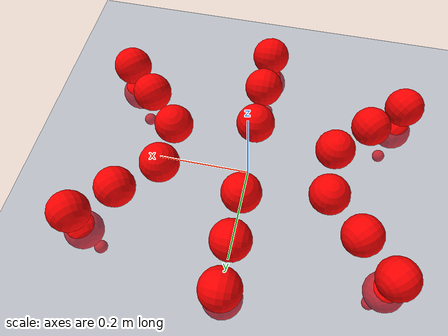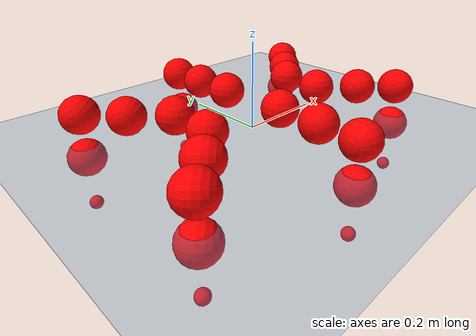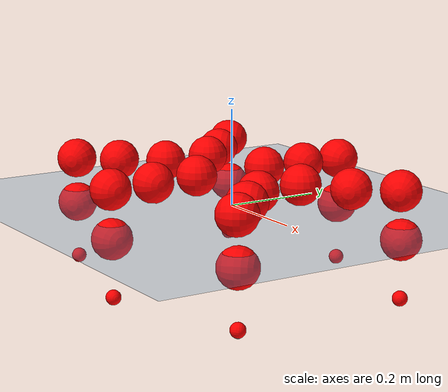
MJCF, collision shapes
<mujoco model="Golem">
  <compiler angle="radian" assetdir="assets" balanceinertia="true" inertiafromgeom="false"/>

  <option timestep="0.005" density="1.2" viscosity="2e-05"/>

  <size nkey="1"/>

  <visual>
    <quality shadowsize="8192"/>
    <map shadowclip="0.5"/>
  </visual>

  <default>
    <default class="/">
      <joint armature="0.01" damping="0.01" frictionloss="0.01"/>
      <geom contype="0" conaffinity="0" group="1" solref="-1000 -80"/>
      <site size="0.01 0.005 0.005" group="5"/>
      <general forcelimited="true" biastype="affine" gainprm="25" biasprm="0 -25 -0.5"/>
      <default class="visual">
        <geom type="mesh" group="2"/>
      </default>
      <default class="collision">
        <geom group="3"/>
      </default>
      <default class="foot">
        <geom size="0.01 0 0" condim="6" group="4" priority="1" solimp="0.015 1 0.01"/>
      </default>
      <default class="reward_collision_sphere">
        <geom group="5" rgba="1 0 0 1"/>
      </default>
    </default>
  </default>

  <asset>
    <texture type="skybox" colorspace="auto" name="//unnamed_texture_0" builtin="gradient" rgb1="0.95 0.95 0.95" rgb2="0.95 0.95 0.95" width="100" height="600"/>
    <texture type="2d" colorspace="auto" name="texplane" builtin="checker" rgb1="0.345 0.575 0.748" rgb2="0.345 0.575 0.748" markrgb="1 1 1" width="512" height="512"/>
    <material name="MatPlane" class="/" texture="texplane" texuniform="true" texrepeat="2 2" specular="0.9"/>
    <mesh name="body" class="/" file="body.stl" scale="0.001 0.001 0.001"/>
    <mesh name="coxa" class="/" file="coxa.stl" scale="0.001 0.001 0.001"/>
    <mesh name="femur" class="/" file="femur.stl" scale="0.001 0.001 0.001"/>
    <mesh name="tibia" class="/" file="tibia.stl" scale="0.001 0.001 0.001"/>
    <mesh name="tarsus" class="/" file="tarsus.stl" scale="0.001 0.001 0.001"/>
  </asset>

  <worldbody>
    <geom name="floor" class="/" size="100 100 0.125" type="plane" group="0" material="MatPlane"/>
    <light name="toplight_shadow" class="/" pos="0 0 5" dir="0.0990148 0.0990148 -0.990148" type="directional" ambient="0.04 0.04 0.04" diffuse="0.55 0.55 0.55" specular="0.12 0.12 0.12"/>
    <light name="toplight_fill" class="/" pos="0 0 5" dir="0.0990148 0.0990148 -0.990148" type="directional" castshadow="false" ambient="0.04 0.04 0.04" diffuse="0.3 0.3 0.3" specular="0.08 0.08 0.08"/>
    <body name="trunk" pos="-0.00158477 -0.00113669 -0.00098629" quat="1 6.99175e-07 -2.19725e-06 -1.69893e-07">
      <inertial pos="0.00194556 -0.000897361 -0.00447264" quat="0.99998 0.00556159 -0.00110272 -0.00273226" mass="4.17651" diaginertia="0.0171701 0.00544473 0.0179814"/>
      <joint name="//unnamed_joint_0" type="free"/>
      <geom name="//unnamed_geom_1" class="/" pos="0 0 0.071534" quat="1 0 0 0" type="mesh" rgba="0.9 0.9 0.9 1" mesh="body"/>
      <site name="imu" class="/" pos="0.156996 0.00785248 0.111975" size="0.0103882"/>
      <camera name="track" class="/" pos="0 -1.77384 0" quat="0.707107 0.707107 0 0" mode="trackcom"/>
      <camera name="ego_camera" class="/" pos="0.144536 0 0.111772" quat="-0.5 -0.5 0.5 0.5"/>
      <body name="coxa_RR" pos="-0.197637 -0.0762038 0.0712446" quat="0.382598 0.000107938 0.00022448 -0.923915">
        <inertial pos="0.000129049 -0.000686713 -0.000105207" quat="1 0.000208971 0.000151874 -0.000142165" mass="0.221521" diaginertia="0.0164695 0.00543572 0.0166649"/>
        <joint name="coxa_joint_RR" class="/" pos="0 0 0" axis="0.00086251 -0.00097251 -0.999999" range="-3.13643 3.14108" armature="0.0107121" damping="0.00659705" frictionloss="0.0103617"/>
        <geom name="//unnamed_geom_2" class="/" type="mesh" rgba="0.2 0.2 0.2 1" mesh="coxa"/>
        <geom name="//unnamed_geom_3" class="reward_collision_sphere" size="0.0415527" pos="-0.0333544 0 0"/>
        <body name="femur_RR" pos="0.0680273 0.00309295 -0.00201972" quat="0.499569 -0.500342 0.500455 0.499633">
          <inertial pos="-0.00275947 -5.50303e-05 -0.00255612" quat="0.99991 0.0102773 0.00848317 -0.00140672" mass="0.217777" diaginertia="0.0163925 0.00528795 0.0169709"/>
          <joint name="femur_joint_RR" class="/" pos="0 0 0" axis="0.000139612 -0.000165155 -1" stiffness="0.00899124" range="-3.11986 3.14446" armature="0.0103188" damping="0.00510245" frictionloss="0.0104506"/>
          <geom name="//unnamed_geom_4" class="/" type="mesh" rgba="0.9 0.9 0.9 1" mesh="femur"/>
          <geom name="//unnamed_geom_5" class="reward_collision_sphere" size="0.0415527"/>
          <body name="tibia_RR" pos="0.00174027 -0.0956289 -0.00210595" quat="-5.29044e-05 1 -5.84828e-05 -0.000100558">
            <inertial pos="0.000164957 0.000557512 -0.00262097" quat="0.999985 0.000187634 -0.00502466 -0.0021427" mass="0.230687" diaginertia="0.0177302 0.00580034 0.0179021"/>
            <joint name="tibia_joint_RR" class="/" pos="0 0 0" axis="-0.00701584 0.011432 0.99991" range="-3.16363 3.13466" armature="0.0102415" damping="0.00320315" frictionloss="0.00922216"/>
            <geom name="//unnamed_geom_6" class="/" type="mesh" rgba="0.2 0.2 0.2 1" mesh="tibia"/>
            <geom name="//unnamed_geom_7" class="reward_collision_sphere" size="0.0415527"/>
            <body name="tarsus_RR" pos="0.0962777 0.00028489 -0.000389872" quat="1 3.62521e-05 -0.000142271 0.000111047">
              <inertial pos="0.0681592 0.00065143 0.000537973" quat="0.507786 0.49532 0.505131 0.491583" mass="0.226778" diaginertia="0.016678 0.00541954 0.0176767"/>
              <joint name="tarsus_joint_RR" class="/" pos="0 0 0" axis="0.00721828 0.00698742 0.99995" range="-3.14443 3.10879" armature="0.0105029" damping="0.0452191" frictionloss="0.00988215"/>
              <geom name="//unnamed_geom_8" class="/" type="mesh" rgba="0.9 0.9 0.9 1" mesh="tarsus"/>
              <geom name="foot_1" class="foot" size="0.0103797" pos="0.124523 0 0" quat="0 -0.707107 0 0.707107"/>
              <geom name="//unnamed_geom_10" class="reward_collision_sphere" size="0.0415527"/>
              <geom name="//unnamed_geom_11" class="reward_collision_sphere" size="0.0155823" pos="0.11952 0 0"/>
              <site name="foot_1" class="foot" pos="0.124523 0 0" quat="0 -0.707107 0 0.707107" size="0.0103882"/>
            </body>
          </body>
        </body>
      </body>
      <body name="coxa_RM" pos="0.000973454 -0.115478 0.0735124" quat="0.707105 0.0011573 0.000816474 -0.707107">
        <inertial pos="-0.00230682 0.000348027 -0.0026166" quat="0.999943 0.00504107 -0.00258241 -0.00899906" mass="0.22485" diaginertia="0.0162254 0.00546727 0.0174398"/>
        <joint name="coxa_joint_RM" class="/" pos="0 0 0" axis="-0.000218728 -0.00448485 -0.99999" range="-3.11874 3.14554" armature="0.0100344" damping="0.00889791" frictionloss="0.0103852"/>
        <geom name="//unnamed_geom_12" class="/" type="mesh" rgba="0.2 0.2 0.2 1" mesh="coxa"/>
        <geom name="//unnamed_geom_13" class="reward_collision_sphere" size="0.0415527" pos="-0.0333544 0 0"/>
        <body name="femur_RM" pos="0.0674646 0.000808008 -0.00206444" quat="0.499946 -0.499653 0.499598 0.500802">
          <inertial pos="0.00275715 -0.000401329 -6.92733e-05" quat="0.999908 0.000475186 0.0122194 0.00592073" mass="0.227169" diaginertia="0.0167652 0.00532289 0.0176226"/>
          <joint name="femur_joint_RM" class="/" pos="0 0 0" axis="-0.00284503 0.0115755 -0.999929" range="-3.12891 3.14641" armature="0.0101374" damping="0.0060148" frictionloss="0.0104683"/>
          <geom name="//unnamed_geom_14" class="/" type="mesh" rgba="0.9 0.9 0.9 1" mesh="femur"/>
          <geom name="//unnamed_geom_15" class="reward_collision_sphere" size="0.0415527"/>
          <body name="tibia_RM" pos="0.00151855 -0.0956293 0.000155292" quat="-2.48393e-05 1 -5.7237e-05 8.72347e-06">
            <inertial pos="-0.00261725 -0.000538973 -0.00116423" quat="0.999992 -0.00105597 -0.00315984 -0.00233211" mass="0.224127" diaginertia="0.0172525 0.00528155 0.0166279"/>
            <joint name="tibia_joint_RM" class="/" pos="0 0 0" axis="-0.00582081 0.000953375 0.999983" range="-3.12843 3.14455" armature="0.0103073" damping="0.0115446" frictionloss="0.0105955"/>
            <geom name="//unnamed_geom_16" class="/" type="mesh" rgba="0.2 0.2 0.2 1" mesh="tibia"/>
            <geom name="//unnamed_geom_17" class="reward_collision_sphere" size="0.0415527"/>
            <body name="tarsus_RM" pos="0.0998068 -0.000245276 -0.000627596" quat="1 0.000117822 -9.7894e-05 -0.000162773">
              <inertial pos="0.0677801 0.000989335 7.39127e-06" quat="0.499276 0.496649 0.500019 0.504028" mass="0.222037" diaginertia="0.0162664 0.00544893 0.0177365"/>
              <joint name="tarsus_joint_RM" class="/" pos="0 0 0" axis="-0.0114793 -0.00138983 0.999933" range="-3.13415 3.1377" armature="0.0102069" damping="0.00477763" frictionloss="0.0105178"/>
              <geom name="//unnamed_geom_18" class="/" type="mesh" rgba="0.9 0.9 0.9 1" mesh="tarsus"/>
              <geom name="foot_2" class="foot" size="0.00943748" pos="0.124523 0 0" quat="0 -0.707107 0 0.707107"/>
              <geom name="//unnamed_geom_20" class="reward_collision_sphere" size="0.0415527"/>
              <geom name="//unnamed_geom_21" class="reward_collision_sphere" size="0.0155823" pos="0.11952 0 0"/>
              <site name="foot_2" class="foot" pos="0.124523 0 0" quat="0 -0.707107 0 0.707107" size="0.0103882"/>
            </body>
          </body>
        </body>
      </body>
      <body name="coxa_RF" pos="0.197383 -0.0713345 0.0696986" quat="0.923867 4.19175e-05 -0.000169935 -0.382713">
        <inertial pos="-0.00256813 -0.00117898 0.00044975" quat="0.99992 -0.0125771 -0.00120767 -0.000543035" mass="0.230144" diaginertia="0.0171862 0.00528112 0.0174152"/>
        <joint name="coxa_joint_RF" class="/" pos="0 0 0" axis="-0.00311391 -0.000755828 -0.999995" range="-3.13808 3.13394" armature="0.0113985" damping="0.0117538" frictionloss="0.01076"/>
        <geom name="//unnamed_geom_22" class="/" type="mesh" rgba="0.2 0.2 0.2 1" mesh="coxa"/>
        <geom name="//unnamed_geom_23" class="reward_collision_sphere" size="0.0415527" pos="-0.0333544 0 0"/>
        <body name="femur_RF" pos="0.0667826 -0.00105776 0.00172928" quat="0.500377 -0.50018 0.499656 0.499787">
          <inertial pos="0.000905395 0.00262366 0.00083363" quat="1 -0.000360628 0.000194205 -0.000400165" mass="0.218739" diaginertia="0.0172519 0.00530021 0.0174621"/>
          <joint name="femur_joint_RF" class="/" pos="0 0 0" axis="0.000565184 -0.00764975 -0.999971" range="-3.15837 3.10404" armature="0.0102718" damping="0.0044641" frictionloss="0.0109316"/>
          <geom name="//unnamed_geom_24" class="/" type="mesh" rgba="0.9 0.9 0.9 1" mesh="femur"/>
          <geom name="//unnamed_geom_25" class="reward_collision_sphere" size="0.0415527"/>
          <body name="tibia_RF" pos="0.000824983 -0.0934539 0.0017099" quat="9.87296e-05 1 -1.33523e-05 0.000102014">
            <inertial pos="-0.00218608 -0.00210742 0.00251747" quat="0.999988 0.00407754 0.00276687 0.00065671" mass="0.229742" diaginertia="0.0170303 0.00550072 0.0175311"/>
            <joint name="tibia_joint_RF" class="/" pos="0 0 0" axis="0.00563824 0.00201601 0.999982" range="-3.13026 3.09552" armature="0.0106627" damping="0.00539669" frictionloss="0.0106258"/>
            <geom name="//unnamed_geom_26" class="/" type="mesh" rgba="0.2 0.2 0.2 1" mesh="tibia"/>
            <geom name="//unnamed_geom_27" class="reward_collision_sphere" size="0.0415527"/>
            <body name="tarsus_RF" pos="0.0991254 0.00251013 -0.00213969" quat="1 0.000298473 -0.000863417 -7.22715e-06">
              <inertial pos="0.0671183 6.47903e-05 -0.000755127" quat="0.499338 0.498587 0.504505 0.497541" mass="0.223181" diaginertia="0.0170486 0.00568624 0.0169612"/>
              <joint name="tarsus_joint_RF" class="/" pos="0 0 0" axis="-0.00249205 0.00344579 0.999991" range="-3.15436 3.13696" armature="0.0116137" damping="0.00532638" frictionloss="0.0117439"/>
              <geom name="//unnamed_geom_28" class="/" type="mesh" rgba="0.9 0.9 0.9 1" mesh="tarsus"/>
              <geom name="foot_3" class="foot" size="0.0114406" pos="0.124523 0 0" quat="0 -0.707107 0 0.707107"/>
              <geom name="//unnamed_geom_30" class="reward_collision_sphere" size="0.0415527"/>
              <geom name="//unnamed_geom_31" class="reward_collision_sphere" size="0.0155823" pos="0.11952 0 0"/>
              <site name="foot_3" class="foot" pos="0.124523 0 0" quat="0 -0.707107 0 0.707107" size="0.0103882"/>
            </body>
          </body>
        </body>
      </body>
      <body name="coxa_LR" pos="-0.19737 0.0753268 0.070251" quat="0.383708 -0.000297518 -0.00047879 0.923454">
        <inertial pos="0.000863228 -0.0013274 -0.00233331" quat="0.999937 -0.0088565 0.00656212 0.00233007" mass="0.210697" diaginertia="0.016472 0.00531956 0.0166961"/>
        <joint name="coxa_joint_LR" class="/" pos="0 0 0" axis="-0.00188992 -0.00229868 -0.999996" stiffness="0.00131422" range="-3.12074 3.19226" armature="0.0115257" damping="0.0128022" frictionloss="0.0090011"/>
        <geom name="//unnamed_geom_32" class="/" type="mesh" rgba="0.2 0.2 0.2 1" mesh="coxa"/>
        <geom name="//unnamed_geom_33" class="reward_collision_sphere" size="0.0415527" pos="-0.0333544 0 0"/>
        <body name="femur_LR" pos="0.0677828 -0.000118998 -0.00185247" quat="0.500102 -0.500036 0.499909 0.499953">
          <inertial pos="-0.000894201 -0.000182087 -0.000340422" quat="0.999988 -0.00206013 -0.00252479 0.00369219" mass="0.221988" diaginertia="0.0168333 0.00560419 0.0172706"/>
          <joint name="femur_joint_LR" class="/" pos="0 0 0" axis="-0.00377055 -0.00167094 0.999991" range="-3.13151 3.09444" armature="0.0112209" damping="0.00383984" frictionloss="0.0108537"/>
          <geom name="//unnamed_geom_34" class="/" type="mesh" rgba="0.9 0.9 0.9 1" mesh="femur"/>
          <geom name="//unnamed_geom_35" class="reward_collision_sphere" size="0.0415527"/>
          <body name="tibia_LR" pos="-0.00197223 -0.0977973 -0.00101791" quat="-5.32853e-05 0.999999 0.000959959 0.000666113">
            <inertial pos="0.00146798 0.00283956 0.000116352" quat="0.999931 -0.00402287 0.00920423 0.00615909" mass="0.217901" diaginertia="0.0174954 0.00563792 0.0168176"/>
            <joint name="tibia_joint_LR" class="/" pos="0 0 0" axis="-0.00170734 0.00528445 -0.999985" range="-3.13897 3.14466" armature="0.0099852" damping="0.00584443" frictionloss="0.0108767"/>
            <geom name="//unnamed_geom_36" class="/" type="mesh" rgba="0.2 0.2 0.2 1" mesh="tibia"/>
            <geom name="//unnamed_geom_37" class="reward_collision_sphere" size="0.0415527"/>
            <body name="tarsus_LR" pos="0.100564 0.00206562 -0.000290448" quat="1 -1.33516e-06 1.36064e-06 -5.5022e-06">
              <inertial pos="0.0669085 -0.000990019 0.000648095" quat="0.499587 0.499278 0.50065 0.500484" mass="0.21797" diaginertia="0.0166124 0.00530676 0.0169178"/>
              <joint name="tarsus_joint_LR" class="/" pos="0 0 0" axis="-0.00157427 -0.000571282 -0.999999" range="-3.12159 3.16067" armature="0.00886328" damping="0.0285118" frictionloss="0.0107043"/>
              <geom name="//unnamed_geom_38" class="/" type="mesh" rgba="0.9 0.9 0.9 1" mesh="tarsus"/>
              <geom name="foot_4" class="foot" size="0.0100132" pos="0.124523 0 0" quat="0.707107 0 -0.707107 0"/>
              <geom name="//unnamed_geom_40" class="reward_collision_sphere" size="0.0415527"/>
              <geom name="//unnamed_geom_41" class="reward_collision_sphere" size="0.0155823" pos="0.11952 0 0"/>
              <site name="foot_4" class="foot" pos="0.124523 0 0" quat="0.707107 0 -0.707107 0" size="0.0103882"/>
            </body>
          </body>
        </body>
      </body>
      <body name="coxa_LM" pos="-0.00229033 0.116881 0.0723336" quat="0.707006 0.00111906 0.000128398 0.707207">
        <inertial pos="0.00285124 -0.00267374 -0.000291701" quat="0.999923 0.00338236 0.0068782 -0.00978866" mass="0.227161" diaginertia="0.0166233 0.00548659 0.0174972"/>
        <joint name="coxa_joint_LM" class="/" pos="0 0 0" axis="-6.87319e-05 -0.00162526 -0.999999" stiffness="0.00338392" range="-3.14546 3.13637" armature="0.0116143" damping="0" frictionloss="0.00998363"/>
        <geom name="//unnamed_geom_42" class="/" type="mesh" rgba="0.2 0.2 0.2 1" mesh="coxa"/>
        <geom name="//unnamed_geom_43" class="reward_collision_sphere" size="0.0415527" pos="-0.0333544 0 0"/>
        <body name="femur_LM" pos="0.0657694 0.000332878 -0.00168084" quat="0.50077 -0.499514 0.49974 0.499975">
          <inertial pos="-0.00245127 -0.000347775 -0.00268896" quat="0.999984 -0.00517817 0.000992831 -0.00183628" mass="0.237169" diaginertia="0.0176212 0.00558856 0.0178294"/>
          <joint name="femur_joint_LM" class="/" pos="0 0 0" axis="0.003073 -0.00200884 0.999993" range="-3.11125 3.11968" armature="0.0112597" damping="0.00199556" frictionloss="0.0103508"/>
          <geom name="//unnamed_geom_44" class="/" type="mesh" rgba="0.9 0.9 0.9 1" mesh="femur"/>
          <geom name="//unnamed_geom_45" class="reward_collision_sphere" size="0.0415527"/>
          <body name="tibia_LM" pos="0.00181571 -0.0918488 0.000971265" quat="6.95535e-05 1 0.000277717 -2.22861e-05">
            <inertial pos="0.00280299 0.000949671 0.00249994" quat="1 3.97591e-05 -0.000167805 0.000413724" mass="0.222321" diaginertia="0.0168512 0.0052743 0.0177895"/>
            <joint name="tibia_joint_LM" class="/" pos="0 0 0" axis="0.00167732 -0.00312618 -0.999994" range="-3.15932 3.1352" armature="0.0112764" damping="0" frictionloss="0.00923784"/>
            <geom name="//unnamed_geom_46" class="/" type="mesh" rgba="0.2 0.2 0.2 1" mesh="tibia"/>
            <geom name="//unnamed_geom_47" class="reward_collision_sphere" size="0.0415527"/>
            <body name="tarsus_LM" pos="0.0980716 -0.00247688 0.00188964" quat="1 0.000542489 -0.00062659 0.000140503">
              <inertial pos="0.0663779 0.000291724 0.00137736" quat="0.499965 0.499875 0.499234 0.500924" mass="0.232073" diaginertia="0.0169606 0.00584599 0.0180573"/>
              <joint name="tarsus_joint_LM" class="/" pos="0 0 0" axis="0.00854239 -0.0062866 -0.999944" stiffness="0.00864512" range="-3.18726 3.12714" armature="0.0104598" damping="0.00920381" frictionloss="0.0103128"/>
              <geom name="//unnamed_geom_48" class="/" type="mesh" rgba="0.9 0.9 0.9 1" mesh="tarsus"/>
              <geom name="foot_5" class="foot" size="0.0103593" pos="0.124523 0 0" quat="0.707107 0 -0.707107 0"/>
              <geom name="//unnamed_geom_50" class="reward_collision_sphere" size="0.0415527"/>
              <geom name="//unnamed_geom_51" class="reward_collision_sphere" size="0.0155823" pos="0.11952 0 0"/>
              <site name="foot_5" class="foot" pos="0.124523 0 0" quat="0.707107 0 -0.707107 0" size="0.0103882"/>
            </body>
          </body>
        </body>
      </body>
      <body name="coxa_LF" pos="0.199787 0.0740237 0.0720792" quat="0.92367 0.00121241 -0.000539031 0.383186">
        <inertial pos="0.000585926 0.00279552 -0.000441687" quat="0.999997 -0.000569534 -0.00108125 -0.00219973" mass="0.22482" diaginertia="0.0172695 0.00583088 0.0180651"/>
        <joint name="coxa_joint_LF" class="/" pos="0 0 0" axis="-0.0115635 -0.00224051 -0.999931" range="-3.14404 3.139" armature="0.0116147" damping="0.00360116" frictionloss="0.00991164"/>
        <geom name="//unnamed_geom_52" class="/" type="mesh" rgba="0.2 0.2 0.2 1" mesh="coxa"/>
        <geom name="//unnamed_geom_53" class="reward_collision_sphere" size="0.0415527" pos="-0.0333544 0 0"/>
        <body name="femur_LF" pos="0.067222 -0.00202789 -0.00308323" quat="0.500295 -0.499614 0.500846 0.499244">
          <inertial pos="0.00179199 0.00102937 0.00260334" quat="0.999912 -0.000510812 0.000466562 -0.0132287" mass="0.223679" diaginertia="0.0167024 0.00566482 0.0174433"/>
          <joint name="femur_joint_LF" class="/" pos="0 0 0" axis="0.0017772 -0.00955828 0.999953" range="-3.14285 3.08488" armature="0.0103627" damping="0" frictionloss="0.00983544"/>
          <geom name="//unnamed_geom_54" class="/" type="mesh" rgba="0.9 0.9 0.9 1" mesh="femur"/>
          <geom name="//unnamed_geom_55" class="reward_collision_sphere" size="0.0415527"/>
          <body name="tibia_LF" pos="-0.00105206 -0.097513 -0.000808983" quat="-0.000544753 0.999999 -0.000448138 -0.00106865">
            <inertial pos="-0.00112633 -0.00269538 -0.000311309" quat="0.999992 0.00156537 0.00317891 0.00195748" mass="0.222859" diaginertia="0.0168143 0.00549918 0.0176119"/>
            <joint name="tibia_joint_LF" class="/" pos="0 0 0" axis="0.0139232 -0.0027143 -0.999899" range="-3.19066 3.14371" armature="0.0112246" damping="0.00516341" frictionloss="0.0118033"/>
            <geom name="//unnamed_geom_56" class="/" type="mesh" rgba="0.2 0.2 0.2 1" mesh="tibia"/>
            <geom name="//unnamed_geom_57" class="reward_collision_sphere" size="0.0415527"/>
            <body name="tarsus_LF" pos="0.0981503 0.00210301 -0.000933434" quat="0.999999 -0.000850183 -0.00024278 0.00085555">
              <inertial pos="0.0667242 0.000504232 -0.000565368" quat="0.49983 0.500008 0.500064 0.500099" mass="0.224017" diaginertia="0.0164963 0.00537456 0.0168148"/>
              <joint name="tarsus_joint_LF" class="/" pos="0 0 0" axis="0.00902922 -0.011623 -0.999892" stiffness="0.0272655" range="-3.15037 3.08819" armature="0.0100451" damping="0.0294835" frictionloss="0.0106899"/>
              <geom name="//unnamed_geom_58" class="/" type="mesh" rgba="0.9 0.9 0.9 1" mesh="tarsus"/>
              <geom name="foot_6" class="foot" size="0.0093584" pos="0.124523 0 0" quat="0.707107 0 -0.707107 0"/>
              <geom name="//unnamed_geom_60" class="reward_collision_sphere" size="0.0415527"/>
              <geom name="//unnamed_geom_61" class="reward_collision_sphere" size="0.0155823" pos="0.11952 0 0"/>
              <site name="foot_6" class="foot" pos="0.124523 0 0" quat="0.707107 0 -0.707107 0" size="0.0103882"/>
            </body>
          </body>
        </body>
      </body>
    </body>
  </worldbody>

  <contact>
    <pair class="/" geom1="floor" geom2="foot_1" name="//unnamed_contact_0"/>
    <pair class="/" geom1="floor" geom2="foot_2" name="//unnamed_contact_1"/>
    <pair class="/" geom1="floor" geom2="foot_3" name="//unnamed_contact_2"/>
    <pair class="/" geom1="floor" geom2="foot_4" name="//unnamed_contact_3"/>
    <pair class="/" geom1="floor" geom2="foot_5" name="//unnamed_contact_4"/>
    <pair class="/" geom1="floor" geom2="foot_6" name="//unnamed_contact_5"/>
  </contact>

  <actuator>
    <general name="coxa_joint_RR" class="/" joint="coxa_joint_RR" forcerange="-6.80776 6.80776" gainprm="24.7187" biasprm="0 -24.7187 -0.518133"/>
    <general name="femur_joint_RR" class="/" joint="femur_joint_RR" forcerange="-7.6697 7.6697" gainprm="24.7187" biasprm="0 -24.7187 -0.518133"/>
    <general name="tibia_joint_RR" class="/" joint="tibia_joint_RR" forcerange="-6.83582 6.83582" gainprm="24.7187" biasprm="0 -24.7187 -0.518133"/>
    <general name="tarsus_joint_RR" class="/" joint="tarsus_joint_RR" forcerange="-7.83195 7.83195" gainprm="24.7187" biasprm="0 -24.7187 -0.518133"/>
    <general name="coxa_joint_RM" class="/" joint="coxa_joint_RM" forcerange="-7.61578 7.61578" gainprm="24.7187" biasprm="0 -24.7187 -0.518133"/>
    <general name="femur_joint_RM" class="/" joint="femur_joint_RM" forcerange="-7.60895 7.60895" gainprm="24.7187" biasprm="0 -24.7187 -0.518133"/>
    <general name="tibia_joint_RM" class="/" joint="tibia_joint_RM" forcerange="-6.81596 6.81596" gainprm="24.7187" biasprm="0 -24.7187 -0.518133"/>
    <general name="tarsus_joint_RM" class="/" joint="tarsus_joint_RM" forcerange="-8.34733 8.34733" gainprm="24.7187" biasprm="0 -24.7187 -0.518133"/>
    <general name="coxa_joint_RF" class="/" joint="coxa_joint_RF" forcerange="-7.28042 7.28042" gainprm="24.7187" biasprm="0 -24.7187 -0.518133"/>
    <general name="femur_joint_RF" class="/" joint="femur_joint_RF" forcerange="-7.43072 7.43072" gainprm="24.7187" biasprm="0 -24.7187 -0.518133"/>
    <general name="tibia_joint_RF" class="/" joint="tibia_joint_RF" forcerange="-8.36443 8.36443" gainprm="24.7187" biasprm="0 -24.7187 -0.518133"/>
    <general name="tarsus_joint_RF" class="/" joint="tarsus_joint_RF" forcerange="-7.62536 7.62536" gainprm="24.7187" biasprm="0 -24.7187 -0.518133"/>
    <general name="coxa_joint_LR" class="/" joint="coxa_joint_LR" forcerange="-7.61904 7.61904" gainprm="24.7187" biasprm="0 -24.7187 -0.518133"/>
    <general name="femur_joint_LR" class="/" joint="femur_joint_LR" forcerange="-6.88317 6.88317" gainprm="24.7187" biasprm="0 -24.7187 -0.518133"/>
    <general name="tibia_joint_LR" class="/" joint="tibia_joint_LR" forcerange="-7.56121 7.56121" gainprm="24.7187" biasprm="0 -24.7187 -0.518133"/>
    <general name="tarsus_joint_LR" class="/" joint="tarsus_joint_LR" forcerange="-7.10225 7.10225" gainprm="24.7187" biasprm="0 -24.7187 -0.518133"/>
    <general name="coxa_joint_LM" class="/" joint="coxa_joint_LM" forcerange="-7.55956 7.55956" gainprm="24.7187" biasprm="0 -24.7187 -0.518133"/>
    <general name="femur_joint_LM" class="/" joint="femur_joint_LM" forcerange="-7.86012 7.86012" gainprm="24.7187" biasprm="0 -24.7187 -0.518133"/>
    <general name="tibia_joint_LM" class="/" joint="tibia_joint_LM" forcerange="-6.99903 6.99903" gainprm="24.7187" biasprm="0 -24.7187 -0.518133"/>
    <general name="tarsus_joint_LM" class="/" joint="tarsus_joint_LM" forcerange="-7.88554 7.88554" gainprm="24.7187" biasprm="0 -24.7187 -0.518133"/>
    <general name="coxa_joint_LF" class="/" joint="coxa_joint_LF" forcerange="-7.72607 7.72607" gainprm="24.7187" biasprm="0 -24.7187 -0.518133"/>
    <general name="femur_joint_LF" class="/" joint="femur_joint_LF" forcerange="-7.28566 7.28566" gainprm="24.7187" biasprm="0 -24.7187 -0.518133"/>
    <general name="tibia_joint_LF" class="/" joint="tibia_joint_LF" forcerange="-8.08114 8.08114" gainprm="24.7187" biasprm="0 -24.7187 -0.518133"/>
    <general name="tarsus_joint_LF" class="/" joint="tarsus_joint_LF" forcerange="-7.58915 7.58915" gainprm="24.7187" biasprm="0 -24.7187 -0.518133"/>
  </actuator>

  <sensor>
    <gyro site="imu" name="imu_angular_velocity"/>
    <velocimeter site="imu" name="imu_linear_velocity"/>
    <framelinvel objtype="site" objname="foot_1" name="foot_1_global_linear_velocity"/>
    <framelinvel objtype="site" objname="foot_2" name="foot_2_global_linear_velocity"/>
    <framelinvel objtype="site" objname="foot_3" name="foot_3_global_linear_velocity"/>
    <framelinvel objtype="site" objname="foot_4" name="foot_4_global_linear_velocity"/>
    <framelinvel objtype="site" objname="foot_5" name="foot_5_global_linear_velocity"/>
    <framelinvel objtype="site" objname="foot_6" name="foot_6_global_linear_velocity"/>
  </sensor>

  <keyframe>
    <key name="home" qpos="0 0 0.1457 1 0 0 0 0 0 0 0 0 0 0 0 0 0 0 0 0 0 0 0 0 0 0 0 0 0 0 0"/>
  </keyframe>
</mujoco>
